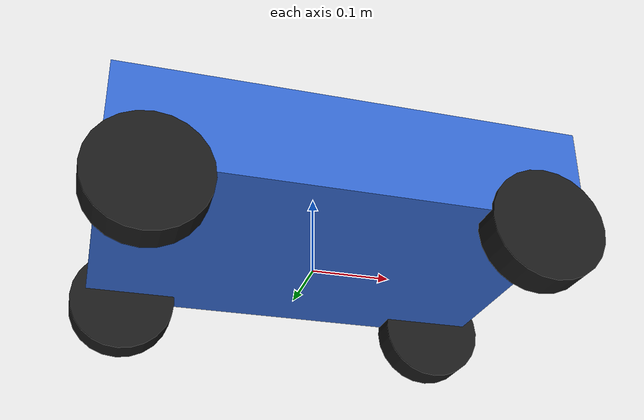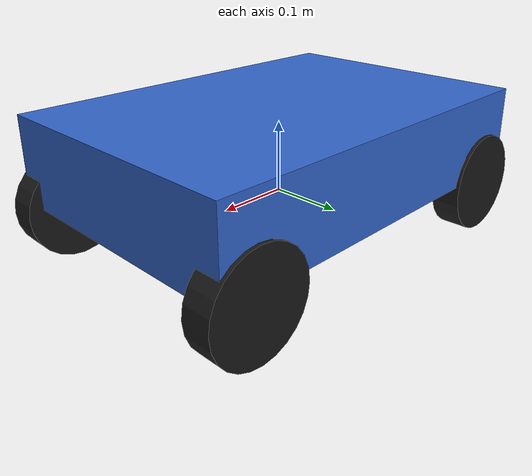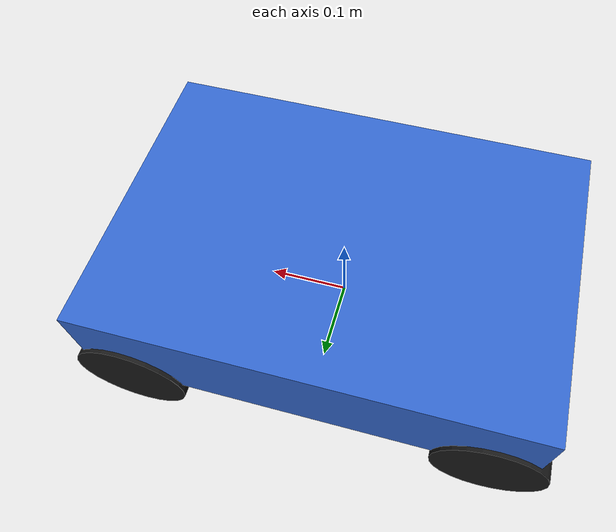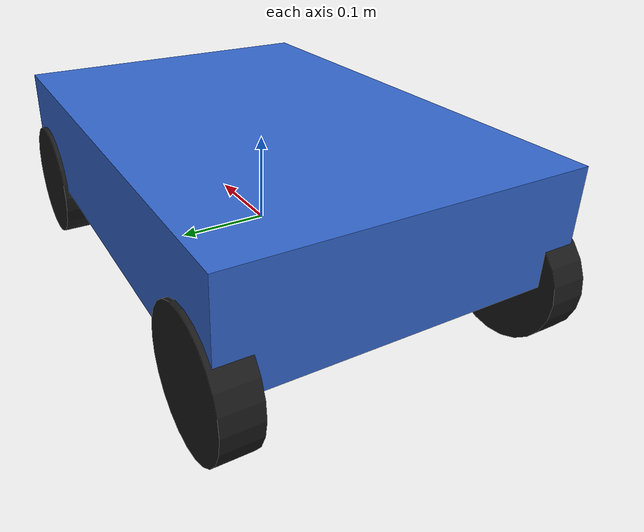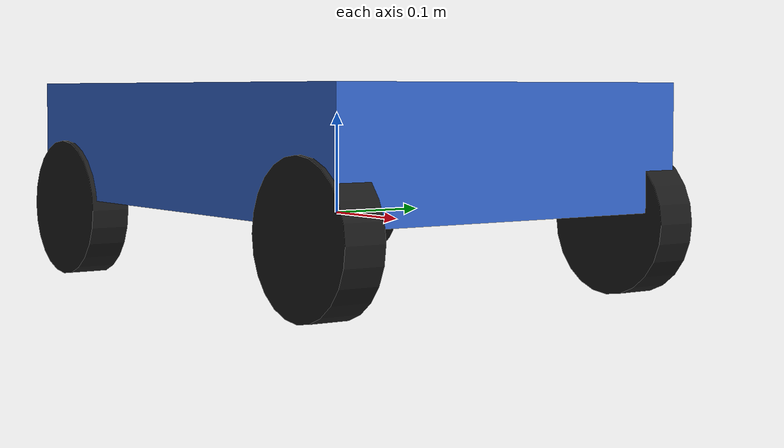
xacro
<?xml version="1.0"?>
<robot xmlns:xacro="http://www.ros.org/wiki/xacro" name="diff_drive_robot">

  <!-- ==================== Constants ==================== -->
  <xacro:property name="PI" value="3.1415926535897931"/>
  <xacro:property name="wheelbase" value="0.45"/>
  <xacro:property name="track_width" value="0.35"/>
  <xacro:property name="wheel_radius" value="0.07"/>
  <xacro:property name="wheel_diameter" value="0.14"/>
  <xacro:property name="wheel_width" value="0.04"/>
  <xacro:property name="chassis_length" value="0.55"/>
  <xacro:property name="chassis_width" value="0.38"/>
  <xacro:property name="chassis_height" value="0.12"/>
  <xacro:property name="lidar_height" value="0.25"/>

  <!-- ==================== Base Link ==================== -->
  <link name="base_footprint"/>

  <joint name="base_footprint_joint" type="fixed">
    <parent link="base_footprint"/>
    <child link="base_link"/>
    <origin xyz="0 0 ${wheel_radius}" rpy="0 0 0"/>
  </joint>

  <link name="base_link">
    <inertial>
      <mass value="15.0"/>
      <inertia ixx="0.5" ixy="0" ixz="0" iyy="0.5" iyz="0" izz="0.5"/>
    </inertial>
    <visual name="base_visual">
      <geometry>
        <box size="${chassis_length} ${chassis_width} ${chassis_height}"/>
      </geometry>
      <material name="blue">
        <color rgba="0.2 0.4 0.8 1.0"/>
      </material>
    </visual>
    <collision name="base_collision">
      <geometry>
        <box size="${chassis_length} ${chassis_width} ${chassis_height}"/>
      </geometry>
    </collision>
  </link>

  <!-- ==================== Wheels ==================== -->
  <xacro:macro name="wheel" params="name x y">
    <joint name="${name}_joint" type="continuous">
      <parent link="base_link"/>
      <child link="${name}_link"/>
      <origin xyz="${x * wheelbase/2} ${y * track_width/2} ${-wheel_radius}" rpy="${PI/2} 0 0"/>
      <axis xyz="0 0 1"/>
      <dynamics damping="0.05" friction="0.1"/>
    </joint>

    <link name="${name}_link">
      <inertial>
        <mass value="0.5"/>
        <inertia ixx="0.0002" ixy="0" ixz="0" iyy="0.0002" iyz="0" izz="0.0002"/>
      </inertial>
      <visual name="${name}_visual">
        <geometry>
          <cylinder radius="${wheel_radius}" length="${wheel_width}"/>
        </geometry>
        <material name="black">
          <color rgba="0.1 0.1 0.1 1.0"/>
        </material>
      </visual>
      <collision name="${name}_collision">
        <geometry>
          <cylinder radius="${wheel_radius}" length="${wheel_width}"/>
        </geometry>
      </collision>
    </link>
  </xacro:macro>

  <xacro:wheel name="front_left" x="1" y="1"/>
  <xacro:wheel name="front_right" x="1" y="-1"/>
  <xacro:wheel name="rear_left" x="-1" y="1"/>
  <xacro:wheel name="rear_right" x="-1" y="-1"/>

  <!-- ==================== Sensor Links ==================== -->
  <joint name="imu_joint" type="fixed">
    <parent link="base_link"/>
    <child link="imu_link"/>
    <origin xyz="0 0 0.08" rpy="0 0 0"/>
  </joint>
  <link name="imu_link"/>

  <joint name="laser_joint" type="fixed">
    <parent link="base_link"/>
    <child link="laser_link"/>
    <origin xyz="0 0 ${lidar_height}" rpy="0 0 0"/>
  </joint>
  <link name="laser_link"/>

  <joint name="gps_joint" type="fixed">
    <parent link="base_link"/>
    <child link="gps_link"/>
    <origin xyz="0 0 0.3" rpy="0 0 0"/>
  </joint>
  <link name="gps_link"/>

  <!-- ==================== Gazebo Plugins ==================== -->
  <gazebo reference="imu_link">
    <sensor type="imu" name="imu_sensor">
      <plugin name="gazebo_ros_imu" filename="libgazebo_ros_imu_sensor.so">
        <topicName>imu/data</topicName>
        <bodyName>imu_link</bodyName>
        <updateRateHZ>100</updateRateHZ>
      </plugin>
    </sensor>
  </gazebo>

  <gazebo reference="laser_link">
    <sensor type="ray" name="laser_sensor">
      <plugin name="gazebo_ros_laser" filename="libgazebo_ros_ray_sensor.so">
        <ros>
          <remapping>~/out:=scan</remapping>
        </ros>
        <frame_name>laser_link</frame_name>
        <output_type>sensor_msgs/LaserScan</output_type>
      </plugin>
    </sensor>
  </gazebo>

  <gazebo reference="gps_link">
    <sensor type="gps" name="gps_sensor">
      <plugin name="gazebo_ros_gps" filename="libgazebo_ros_gps_sensor.so">
        <topicName>gps/fix</topicName>
        <frameName>gps_link</frameName>
      </plugin>
    </sensor>
  </gazebo>

  <gazebo>
    <plugin name="gazebo_ros_diff_drive" filename="libgazebo_ros_diff_drive.so">
      <ros>
        <namespace>/robot</namespace>
      </ros>
      <update_rate>50</update_rate>
      <left_joint>front_left_joint</left_joint>
      <right_joint>front_right_joint</right_joint>
      <wheel_separation>${track_width}</wheel_separation>
      <wheel_diameter>${wheel_diameter}</wheel_diameter>
      <max_wheel_torque>100</max_wheel_torque>
      <max_wheel_acceleration>0.5</max_wheel_acceleration>
      <publish_odom>true</publish_odom>
      <publish_odom_tf>true</publish_odom_tf>
      <publish_wheel_tf>true</publish_wheel_tf>
    </plugin>
  </gazebo>

</robot>
